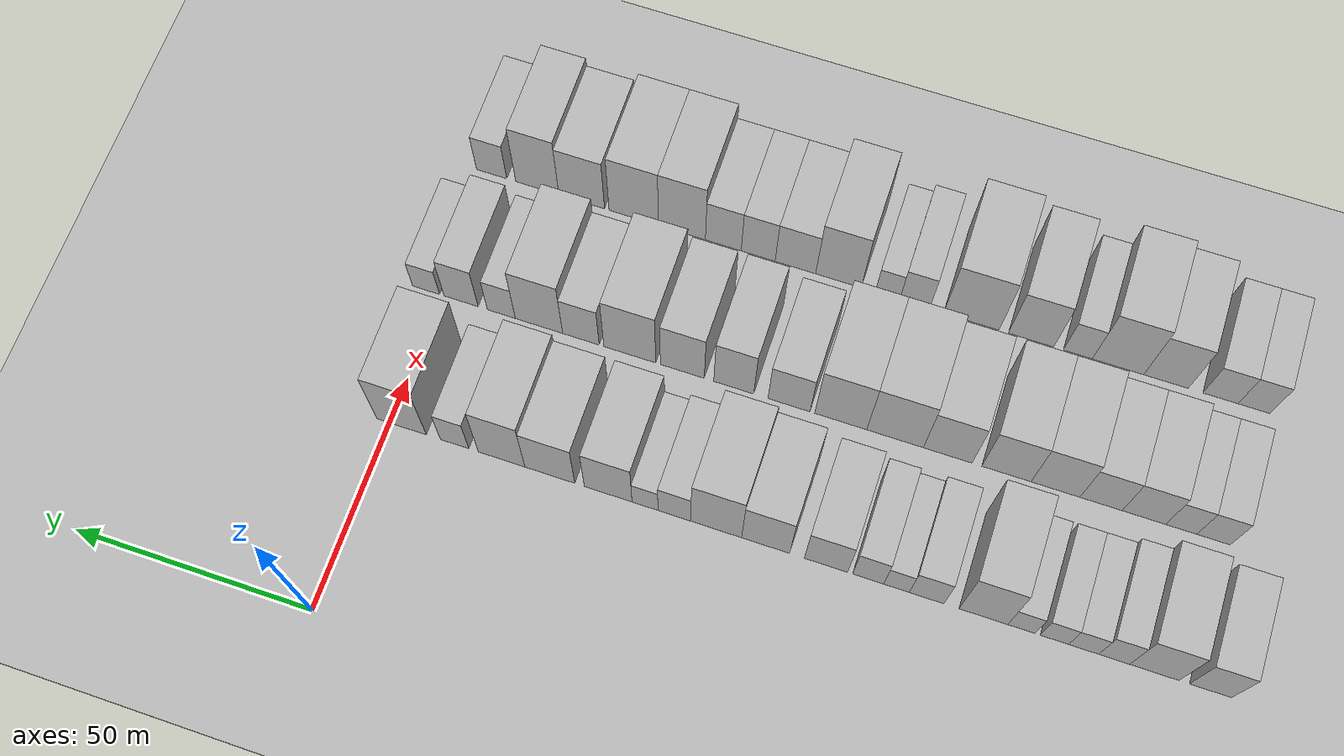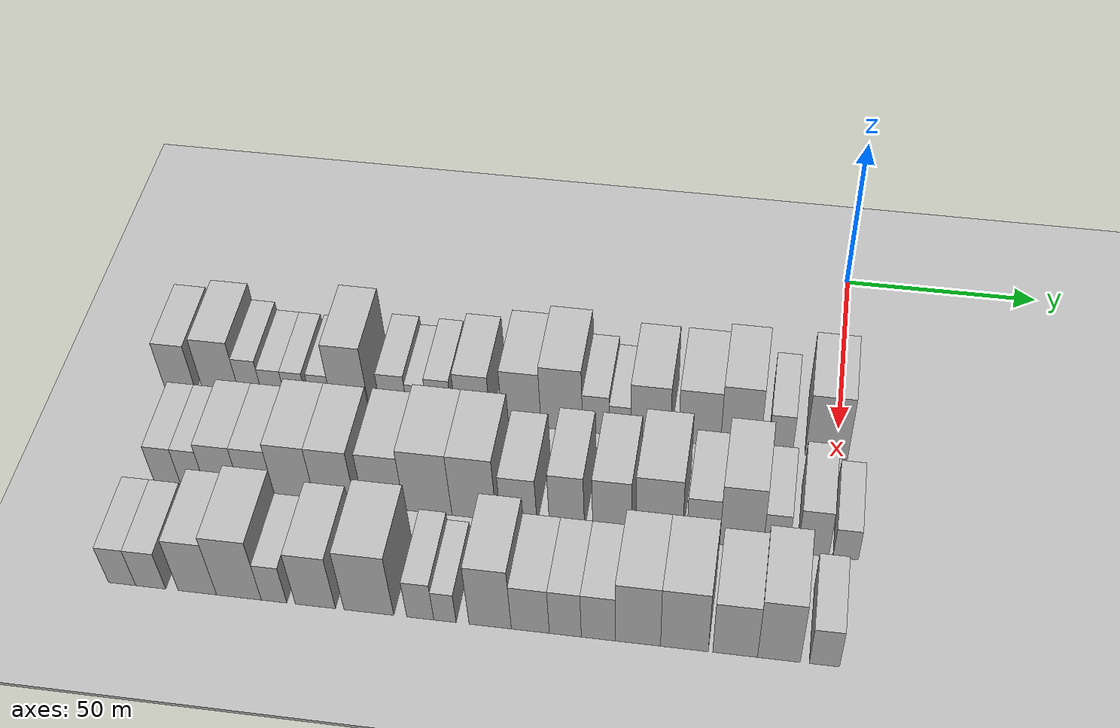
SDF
<sdf version="1.6">
 <world name="default">
  <include><name>ground_plane_1</name><uri>model://HANNAS_ground_plane</uri></include>
  <include>
   <name>ground_plane_2</name>
   <uri>model://HANNAS_ground_plane</uri>
   <pose>100 0 0  0 0 0</pose>
  </include>
  <model name="building_20">
   <static>1</static>
   <pose>50.0000 -167.0182 0 0.000000 0.000000 0.000000</pose>
   <link name="link">
    <pose>0 0 9.00 0 0 0</pose>
    <collision name="collision"><geometry><box><size>20.0000 8.1402 18.0000</size></box></geometry></collision>
    <visual name="visual">
     <cast_shadows>0</cast_shadows>
     <geometry><box><size>20.0000 8.1402 18.0000</size></box></geometry>
     <material>
      <script>
       <uri>model://HANNAS_wall/materials/scripts</uri>
       <uri>model://HANNAS_wall/materials/textures</uri>
       <name>vrc/HANNAS_wall</name>
      </script>
     </material>
    </visual>
   </link>
  </model>
  <model name="building_21">
   <static>1</static>
   <pose>50.0000 -156.1584 0 0.000000 0.000000 0.000000</pose>
   <link name="link">
    <pose>0 0 10.50 0 0 0</pose>
    <collision name="collision"><geometry><box><size>20.0000 9.5794 21.0000</size></box></geometry></collision>
    <visual name="visual">
     <cast_shadows>0</cast_shadows>
     <geometry><box><size>20.0000 9.5794 21.0000</size></box></geometry>
     <material>
      <script>
       <uri>model://HANNAS_wall/materials/scripts</uri>
       <uri>model://HANNAS_wall/materials/textures</uri>
       <name>vrc/HANNAS_wall</name>
      </script>
     </material>
    </visual>
   </link>
  </model>
  <model name="building_22">
   <static>1</static>
   <pose>50.0000 -148.3388 0 0.000000 0.000000 0.000000</pose>
   <link name="link">
    <pose>0 0 7.50 0 0 0</pose>
    <collision name="collision"><geometry><box><size>20.0000 6.0599 15.0000</size></box></geometry></collision>
    <visual name="visual">
     <cast_shadows>0</cast_shadows>
     <geometry><box><size>20.0000 6.0599 15.0000</size></box></geometry>
     <material>
      <script>
       <uri>model://HANNAS_wall/materials/scripts</uri>
       <uri>model://HANNAS_wall/materials/textures</uri>
       <name>vrc/HANNAS_wall</name>
      </script>
     </material>
    </visual>
   </link>
  </model>
  <model name="building_23">
   <static>1</static>
   <pose>50.0000 -142.3592 0 0.000000 0.000000 0.000000</pose>
   <link name="link">
    <pose>0 0 6.00 0 0 0</pose>
    <collision name="collision"><geometry><box><size>20.0000 5.8992 12.0000</size></box></geometry></collision>
    <visual name="visual">
     <cast_shadows>0</cast_shadows>
     <geometry><box><size>20.0000 5.8992 12.0000</size></box></geometry>
     <material>
      <script>
       <uri>model://HANNAS_wall/materials/scripts</uri>
       <uri>model://HANNAS_wall/materials/textures</uri>
       <name>vrc/HANNAS_wall</name>
      </script>
     </material>
    </visual>
   </link>
  </model>
  <model name="building_24">
   <static>1</static>
   <pose>50.0000 -136.6137 0 0.000000 0.000000 0.000000</pose>
   <link name="link">
    <pose>0 0 6.00 0 0 0</pose>
    <collision name="collision"><geometry><box><size>20.0000 5.5917 12.0000</size></box></geometry></collision>
    <visual name="visual">
     <cast_shadows>0</cast_shadows>
     <geometry><box><size>20.0000 5.5917 12.0000</size></box></geometry>
     <material>
      <script>
       <uri>model://HANNAS_wall/materials/scripts</uri>
       <uri>model://HANNAS_wall/materials/textures</uri>
       <name>vrc/HANNAS_wall</name>
      </script>
     </material>
    </visual>
   </link>
  </model>
  <model name="building_25">
   <static>1</static>
   <pose>50.0000 -130.1147 0 0.000000 0.000000 0.000000</pose>
   <link name="link">
    <pose>0 0 6.00 0 0 0</pose>
    <collision name="collision"><geometry><box><size>20.0000 5.4064 12.0000</size></box></geometry></collision>
    <visual name="visual">
     <cast_shadows>0</cast_shadows>
     <geometry><box><size>20.0000 5.4064 12.0000</size></box></geometry>
     <material>
      <script>
       <uri>model://HANNAS_wall/materials/scripts</uri>
       <uri>model://HANNAS_wall/materials/textures</uri>
       <name>vrc/HANNAS_wall</name>
      </script>
     </material>
    </visual>
   </link>
  </model>
  <model name="building_26">
   <static>1</static>
   <pose>50.0000 -122.5691 0 0.000000 0.000000 0.000000</pose>
   <link name="link">
    <pose>0 0 12.00 0 0 0</pose>
    <collision name="collision"><geometry><box><size>20.0000 9.6849 24.0000</size></box></geometry></collision>
    <visual name="visual">
     <cast_shadows>0</cast_shadows>
     <geometry><box><size>20.0000 9.6849 24.0000</size></box></geometry>
     <material>
      <script>
       <uri>model://HANNAS_wall/materials/scripts</uri>
       <uri>model://HANNAS_wall/materials/textures</uri>
       <name>vrc/HANNAS_wall</name>
      </script>
     </material>
    </visual>
   </link>
  </model>
  <model name="building_27">
   <static>1</static>
   <pose>50.0000 -111.2529 0 0.000000 0.000000 0.000000</pose>
   <link name="link">
    <pose>0 0 7.50 0 0 0</pose>
    <collision name="collision"><geometry><box><size>20.0000 6.9476 15.0000</size></box></geometry></collision>
    <visual name="visual">
     <cast_shadows>0</cast_shadows>
     <geometry><box><size>20.0000 6.9476 15.0000</size></box></geometry>
     <material>
      <script>
       <uri>model://HANNAS_wall/materials/scripts</uri>
       <uri>model://HANNAS_wall/materials/textures</uri>
       <name>vrc/HANNAS_wall</name>
      </script>
     </material>
    </visual>
   </link>
  </model>
  <model name="building_28">
   <static>1</static>
   <pose>50.0000 -105.2134 0 0.000000 0.000000 0.000000</pose>
   <link name="link">
    <pose>0 0 6.00 0 0 0</pose>
    <collision name="collision"><geometry><box><size>20.0000 5.1313 12.0000</size></box></geometry></collision>
    <visual name="visual">
     <cast_shadows>0</cast_shadows>
     <geometry><box><size>20.0000 5.1313 12.0000</size></box></geometry>
     <material>
      <script>
       <uri>model://HANNAS_wall/materials/scripts</uri>
       <uri>model://HANNAS_wall/materials/textures</uri>
       <name>vrc/HANNAS_wall</name>
      </script>
     </material>
    </visual>
   </link>
  </model>
  <model name="building_29">
   <static>1</static>
   <pose>50.0000 -99.5146 0 0.000000 0.000000 0.000000</pose>
   <link name="link">
    <pose>0 0 7.50 0 0 0</pose>
    <collision name="collision"><geometry><box><size>20.0000 6.2664 15.0000</size></box></geometry></collision>
    <visual name="visual">
     <cast_shadows>0</cast_shadows>
     <geometry><box><size>20.0000 6.2664 15.0000</size></box></geometry>
     <material>
      <script>
       <uri>model://HANNAS_wall/materials/scripts</uri>
       <uri>model://HANNAS_wall/materials/textures</uri>
       <name>vrc/HANNAS_wall</name>
      </script>
     </material>
    </visual>
   </link>
  </model>
  <model name="building_30">
   <static>1</static>
   <pose>50.0000 -90.9956 0 0.000000 0.000000 0.000000</pose>
   <link name="link">
    <pose>0 0 9.00 0 0 0</pose>
    <collision name="collision"><geometry><box><size>20.0000 8.7716 18.0000</size></box></geometry></collision>
    <visual name="visual">
     <cast_shadows>0</cast_shadows>
     <geometry><box><size>20.0000 8.7716 18.0000</size></box></geometry>
     <material>
      <script>
       <uri>model://HANNAS_wall/materials/scripts</uri>
       <uri>model://HANNAS_wall/materials/textures</uri>
       <name>vrc/HANNAS_wall</name>
      </script>
     </material>
    </visual>
   </link>
  </model>
  <model name="building_31">
   <static>1</static>
   <pose>50.0000 -78.7101 0 0.000000 0.000000 0.000000</pose>
   <link name="link">
    <pose>0 0 10.50 0 0 0</pose>
    <collision name="collision"><geometry><box><size>20.0000 9.7994 21.0000</size></box></geometry></collision>
    <visual name="visual">
     <cast_shadows>0</cast_shadows>
     <geometry><box><size>20.0000 9.7994 21.0000</size></box></geometry>
     <material>
      <script>
       <uri>model://HANNAS_wall/materials/scripts</uri>
       <uri>model://HANNAS_wall/materials/textures</uri>
       <name>vrc/HANNAS_wall</name>
      </script>
     </material>
    </visual>
   </link>
  </model>
  <model name="building_32">
   <static>1</static>
   <pose>50.0000 -68.5480 0 0.000000 0.000000 0.000000</pose>
   <link name="link">
    <pose>0 0 12.00 0 0 0</pose>
    <collision name="collision"><geometry><box><size>20.0000 10.5249 24.0000</size></box></geometry></collision>
    <visual name="visual">
     <cast_shadows>0</cast_shadows>
     <geometry><box><size>20.0000 10.5249 24.0000</size></box></geometry>
     <material>
      <script>
       <uri>model://HANNAS_wall/materials/scripts</uri>
       <uri>model://HANNAS_wall/materials/textures</uri>
       <name>vrc/HANNAS_wall</name>
      </script>
     </material>
    </visual>
   </link>
  </model>
  <model name="building_33">
   <static>1</static>
   <pose>50.0000 -59.9361 0 0.000000 0.000000 0.000000</pose>
   <link name="link">
    <pose>0 0 7.50 0 0 0</pose>
    <collision name="collision"><geometry><box><size>20.0000 6.6990 15.0000</size></box></geometry></collision>
    <visual name="visual">
     <cast_shadows>0</cast_shadows>
     <geometry><box><size>20.0000 6.6990 15.0000</size></box></geometry>
     <material>
      <script>
       <uri>model://HANNAS_wall/materials/scripts</uri>
       <uri>model://HANNAS_wall/materials/textures</uri>
       <name>vrc/HANNAS_wall</name>
      </script>
     </material>
    </visual>
   </link>
  </model>
  <model name="building_34">
   <static>1</static>
   <pose>50.0000 -53.8997 0 0.000000 0.000000 0.000000</pose>
   <link name="link">
    <pose>0 0 6.00 0 0 0</pose>
    <collision name="collision"><geometry><box><size>20.0000 5.3738 12.0000</size></box></geometry></collision>
    <visual name="visual">
     <cast_shadows>0</cast_shadows>
     <geometry><box><size>20.0000 5.3738 12.0000</size></box></geometry>
     <material>
      <script>
       <uri>model://HANNAS_wall/materials/scripts</uri>
       <uri>model://HANNAS_wall/materials/textures</uri>
       <name>vrc/HANNAS_wall</name>
      </script>
     </material>
    </visual>
   </link>
  </model>
  <model name="building_35">
   <static>1</static>
   <pose>50.0000 -46.2519 0 0.000000 0.000000 0.000000</pose>
   <link name="link">
    <pose>0 0 10.50 0 0 0</pose>
    <collision name="collision"><geometry><box><size>20.0000 9.9219 21.0000</size></box></geometry></collision>
    <visual name="visual">
     <cast_shadows>0</cast_shadows>
     <geometry><box><size>20.0000 9.9219 21.0000</size></box></geometry>
     <material>
      <script>
       <uri>model://HANNAS_wall/materials/scripts</uri>
       <uri>model://HANNAS_wall/materials/textures</uri>
       <name>vrc/HANNAS_wall</name>
      </script>
     </material>
    </visual>
   </link>
  </model>
  <model name="building_36">
   <static>1</static>
   <pose>50.0000 -34.0542 0 0.000000 0.000000 0.000000</pose>
   <link name="link">
    <pose>0 0 10.50 0 0 0</pose>
    <collision name="collision"><geometry><box><size>20.0000 10.4734 21.0000</size></box></geometry></collision>
    <visual name="visual">
     <cast_shadows>0</cast_shadows>
     <geometry><box><size>20.0000 10.4734 21.0000</size></box></geometry>
     <material>
      <script>
       <uri>model://HANNAS_wall/materials/scripts</uri>
       <uri>model://HANNAS_wall/materials/textures</uri>
       <name>vrc/HANNAS_wall</name>
      </script>
     </material>
    </visual>
   </link>
  </model>
  <model name="building_37">
   <static>1</static>
   <pose>50.0000 -23.8885 0 0.000000 0.000000 0.000000</pose>
   <link name="link">
    <pose>0 0 12.00 0 0 0</pose>
    <collision name="collision"><geometry><box><size>20.0000 9.8579 24.0000</size></box></geometry></collision>
    <visual name="visual">
     <cast_shadows>0</cast_shadows>
     <geometry><box><size>20.0000 9.8579 24.0000</size></box></geometry>
     <material>
      <script>
       <uri>model://HANNAS_wall/materials/scripts</uri>
       <uri>model://HANNAS_wall/materials/textures</uri>
       <name>vrc/HANNAS_wall</name>
      </script>
     </material>
    </visual>
   </link>
  </model>
  <model name="building_38">
   <static>1</static>
   <pose>50.0000 -13.9363 0 0.000000 0.000000 0.000000</pose>
   <link name="link">
    <pose>0 0 7.50 0 0 0</pose>
    <collision name="collision"><geometry><box><size>20.0000 6.0465 15.0000</size></box></geometry></collision>
    <visual name="visual">
     <cast_shadows>0</cast_shadows>
     <geometry><box><size>20.0000 6.0465 15.0000</size></box></geometry>
     <material>
      <script>
       <uri>model://HANNAS_wall/materials/scripts</uri>
       <uri>model://HANNAS_wall/materials/textures</uri>
       <name>vrc/HANNAS_wall</name>
      </script>
     </material>
    </visual>
   </link>
  </model>
  <model name="building_39">
   <static>1</static>
   <pose>50.0000 -2.6505 0 0.000000 0.000000 0.000000</pose>
   <link name="link">
    <pose>0 0 12.00 0 0 0</pose>
    <collision name="collision"><geometry><box><size>20.0000 10.5251 24.0000</size></box></geometry></collision>
    <visual name="visual">
     <cast_shadows>0</cast_shadows>
     <geometry><box><size>20.0000 10.5251 24.0000</size></box></geometry>
     <material>
      <script>
       <uri>model://HANNAS_wall/materials/scripts</uri>
       <uri>model://HANNAS_wall/materials/textures</uri>
       <name>vrc/HANNAS_wall</name>
      </script>
     </material>
    </visual>
   </link>
  </model>
  <model name="building_96">
   <static>1</static>
   <pose>79.0000 -161.1237 0 0.000000 0.000000 0.000000</pose>
   <link name="link">
    <pose>0 0 7.50 0 0 0</pose>
    <collision name="collision"><geometry><box><size>20.0000 6.6468 15.0000</size></box></geometry></collision>
    <visual name="visual">
     <cast_shadows>0</cast_shadows>
     <geometry><box><size>20.0000 6.6468 15.0000</size></box></geometry>
     <material>
      <script>
       <uri>model://HANNAS_wall/materials/scripts</uri>
       <uri>model://HANNAS_wall/materials/textures</uri>
       <name>vrc/HANNAS_wall</name>
      </script>
     </material>
    </visual>
   </link>
  </model>
  <model name="building_97">
   <static>1</static>
   <pose>79.0000 -154.7119 0 0.000000 0.000000 0.000000</pose>
   <link name="link">
    <pose>0 0 7.50 0 0 0</pose>
    <collision name="collision"><geometry><box><size>20.0000 6.1768 15.0000</size></box></geometry></collision>
    <visual name="visual">
     <cast_shadows>0</cast_shadows>
     <geometry><box><size>20.0000 6.1768 15.0000</size></box></geometry>
     <material>
      <script>
       <uri>model://HANNAS_wall/materials/scripts</uri>
       <uri>model://HANNAS_wall/materials/textures</uri>
       <name>vrc/HANNAS_wall</name>
      </script>
     </material>
    </visual>
   </link>
  </model>
  <model name="building_98">
   <static>1</static>
   <pose>79.0000 -147.2518 0 0.000000 0.000000 0.000000</pose>
   <link name="link">
    <pose>0 0 9.00 0 0 0</pose>
    <collision name="collision"><geometry><box><size>20.0000 8.7434 18.0000</size></box></geometry></collision>
    <visual name="visual">
     <cast_shadows>0</cast_shadows>
     <geometry><box><size>20.0000 8.7434 18.0000</size></box></geometry>
     <material>
      <script>
       <uri>model://HANNAS_wall/materials/scripts</uri>
       <uri>model://HANNAS_wall/materials/textures</uri>
       <name>vrc/HANNAS_wall</name>
      </script>
     </material>
    </visual>
   </link>
  </model>
  <model name="building_99">
   <static>1</static>
   <pose>79.0000 -138.6268 0 0.000000 0.000000 0.000000</pose>
   <link name="link">
    <pose>0 0 9.00 0 0 0</pose>
    <collision name="collision"><geometry><box><size>20.0000 8.5066 18.0000</size></box></geometry></collision>
    <visual name="visual">
     <cast_shadows>0</cast_shadows>
     <geometry><box><size>20.0000 8.5066 18.0000</size></box></geometry>
     <material>
      <script>
       <uri>model://HANNAS_wall/materials/scripts</uri>
       <uri>model://HANNAS_wall/materials/textures</uri>
       <name>vrc/HANNAS_wall</name>
      </script>
     </material>
    </visual>
   </link>
  </model>
  <model name="building_100">
   <static>1</static>
   <pose>79.0000 -129.4145 0 0.000000 0.000000 0.000000</pose>
   <link name="link">
    <pose>0 0 10.50 0 0 0</pose>
    <collision name="collision"><geometry><box><size>20.0000 9.9181 21.0000</size></box></geometry></collision>
    <visual name="visual">
     <cast_shadows>0</cast_shadows>
     <geometry><box><size>20.0000 9.9181 21.0000</size></box></geometry>
     <material>
      <script>
       <uri>model://HANNAS_wall/materials/scripts</uri>
       <uri>model://HANNAS_wall/materials/textures</uri>
       <name>vrc/HANNAS_wall</name>
      </script>
     </material>
    </visual>
   </link>
  </model>
  <model name="building_101">
   <static>1</static>
   <pose>79.0000 -119.4290 0 0.000000 0.000000 0.000000</pose>
   <link name="link">
    <pose>0 0 10.50 0 0 0</pose>
    <collision name="collision"><geometry><box><size>20.0000 10.0529 21.0000</size></box></geometry></collision>
    <visual name="visual">
     <cast_shadows>0</cast_shadows>
     <geometry><box><size>20.0000 10.0529 21.0000</size></box></geometry>
     <material>
      <script>
       <uri>model://HANNAS_wall/materials/scripts</uri>
       <uri>model://HANNAS_wall/materials/textures</uri>
       <name>vrc/HANNAS_wall</name>
      </script>
     </material>
    </visual>
   </link>
  </model>
  <model name="building_102">
   <static>1</static>
   <pose>79.0000 -107.3969 0 0.000000 0.000000 0.000000</pose>
   <link name="link">
    <pose>0 0 10.50 0 0 0</pose>
    <collision name="collision"><geometry><box><size>20.0000 10.0112 21.0000</size></box></geometry></collision>
    <visual name="visual">
     <cast_shadows>0</cast_shadows>
     <geometry><box><size>20.0000 10.0112 21.0000</size></box></geometry>
     <material>
      <script>
       <uri>model://HANNAS_wall/materials/scripts</uri>
       <uri>model://HANNAS_wall/materials/textures</uri>
       <name>vrc/HANNAS_wall</name>
      </script>
     </material>
    </visual>
   </link>
  </model>
  <model name="building_103">
   <static>1</static>
   <pose>79.0000 -96.5402 0 0.000000 0.000000 0.000000</pose>
   <link name="link">
    <pose>0 0 12.00 0 0 0</pose>
    <collision name="collision"><geometry><box><size>20.0000 11.7023 24.0000</size></box></geometry></collision>
    <visual name="visual">
     <cast_shadows>0</cast_shadows>
     <geometry><box><size>20.0000 11.7023 24.0000</size></box></geometry>
     <material>
      <script>
       <uri>model://HANNAS_wall/materials/scripts</uri>
       <uri>model://HANNAS_wall/materials/textures</uri>
       <name>vrc/HANNAS_wall</name>
      </script>
     </material>
    </visual>
   </link>
  </model>
  <model name="building_104">
   <static>1</static>
   <pose>79.0000 -85.2646 0 0.000000 0.000000 0.000000</pose>
   <link name="link">
    <pose>0 0 12.00 0 0 0</pose>
    <collision name="collision"><geometry><box><size>20.0000 10.8489 24.0000</size></box></geometry></collision>
    <visual name="visual">
     <cast_shadows>0</cast_shadows>
     <geometry><box><size>20.0000 10.8489 24.0000</size></box></geometry>
     <material>
      <script>
       <uri>model://HANNAS_wall/materials/scripts</uri>
       <uri>model://HANNAS_wall/materials/textures</uri>
       <name>vrc/HANNAS_wall</name>
      </script>
     </material>
    </visual>
   </link>
  </model>
  <model name="building_105">
   <static>1</static>
   <pose>79.0000 -74.4326 0 0.000000 0.000000 0.000000</pose>
   <link name="link">
    <pose>0 0 9.00 0 0 0</pose>
    <collision name="collision"><geometry><box><size>20.0000 8.8153 18.0000</size></box></geometry></collision>
    <visual name="visual">
     <cast_shadows>0</cast_shadows>
     <geometry><box><size>20.0000 8.8153 18.0000</size></box></geometry>
     <material>
      <script>
       <uri>model://HANNAS_wall/materials/scripts</uri>
       <uri>model://HANNAS_wall/materials/textures</uri>
       <name>vrc/HANNAS_wall</name>
      </script>
     </material>
    </visual>
   </link>
  </model>
  <model name="building_106">
   <static>1</static>
   <pose>79.0000 -62.8008 0 0.000000 0.000000 0.000000</pose>
   <link name="link">
    <pose>0 0 10.50 0 0 0</pose>
    <collision name="collision"><geometry><box><size>20.0000 8.4483 21.0000</size></box></geometry></collision>
    <visual name="visual">
     <cast_shadows>0</cast_shadows>
     <geometry><box><size>20.0000 8.4483 21.0000</size></box></geometry>
     <material>
      <script>
       <uri>model://HANNAS_wall/materials/scripts</uri>
       <uri>model://HANNAS_wall/materials/textures</uri>
       <name>vrc/HANNAS_wall</name>
      </script>
     </material>
    </visual>
   </link>
  </model>
  <model name="building_107">
   <static>1</static>
   <pose>79.0000 -51.9100 0 0.000000 0.000000 0.000000</pose>
   <link name="link">
    <pose>0 0 10.50 0 0 0</pose>
    <collision name="collision"><geometry><box><size>20.0000 9.3333 21.0000</size></box></geometry></collision>
    <visual name="visual">
     <cast_shadows>0</cast_shadows>
     <geometry><box><size>20.0000 9.3333 21.0000</size></box></geometry>
     <material>
      <script>
       <uri>model://HANNAS_wall/materials/scripts</uri>
       <uri>model://HANNAS_wall/materials/textures</uri>
       <name>vrc/HANNAS_wall</name>
      </script>
     </material>
    </visual>
   </link>
  </model>
  <model name="building_108">
   <static>1</static>
   <pose>79.0000 -40.6981 0 0.000000 0.000000 0.000000</pose>
   <link name="link">
    <pose>0 0 12.00 0 0 0</pose>
    <collision name="collision"><geometry><box><size>20.0000 11.0905 24.0000</size></box></geometry></collision>
    <visual name="visual">
     <cast_shadows>0</cast_shadows>
     <geometry><box><size>20.0000 11.0905 24.0000</size></box></geometry>
     <material>
      <script>
       <uri>model://HANNAS_wall/materials/scripts</uri>
       <uri>model://HANNAS_wall/materials/textures</uri>
       <name>vrc/HANNAS_wall</name>
      </script>
     </material>
    </visual>
   </link>
  </model>
  <model name="building_109">
   <static>1</static>
   <pose>79.0000 -30.2200 0 0.000000 0.000000 0.000000</pose>
   <link name="link">
    <pose>0 0 9.00 0 0 0</pose>
    <collision name="collision"><geometry><box><size>20.0000 7.8657 18.0000</size></box></geometry></collision>
    <visual name="visual">
     <cast_shadows>0</cast_shadows>
     <geometry><box><size>20.0000 7.8657 18.0000</size></box></geometry>
     <material>
      <script>
       <uri>model://HANNAS_wall/materials/scripts</uri>
       <uri>model://HANNAS_wall/materials/textures</uri>
       <name>vrc/HANNAS_wall</name>
      </script>
     </material>
    </visual>
   </link>
  </model>
  <model name="building_110">
   <static>1</static>
   <pose>79.0000 -21.1591 0 0.000000 0.000000 0.000000</pose>
   <link name="link">
    <pose>0 0 12.00 0 0 0</pose>
    <collision name="collision"><geometry><box><size>20.0000 10.2562 24.0000</size></box></geometry></collision>
    <visual name="visual">
     <cast_shadows>0</cast_shadows>
     <geometry><box><size>20.0000 10.2562 24.0000</size></box></geometry>
     <material>
      <script>
       <uri>model://HANNAS_wall/materials/scripts</uri>
       <uri>model://HANNAS_wall/materials/textures</uri>
       <name>vrc/HANNAS_wall</name>
      </script>
     </material>
    </visual>
   </link>
  </model>
  <model name="building_111">
   <static>1</static>
   <pose>79.0000 -12.9830 0 0.000000 0.000000 0.000000</pose>
   <link name="link">
    <pose>0 0 7.50 0 0 0</pose>
    <collision name="collision"><geometry><box><size>20.0000 6.0959 15.0000</size></box></geometry></collision>
    <visual name="visual">
     <cast_shadows>0</cast_shadows>
     <geometry><box><size>20.0000 6.0959 15.0000</size></box></geometry>
     <material>
      <script>
       <uri>model://HANNAS_wall/materials/scripts</uri>
       <uri>model://HANNAS_wall/materials/textures</uri>
       <name>vrc/HANNAS_wall</name>
      </script>
     </material>
    </visual>
   </link>
  </model>
  <model name="building_112">
   <static>1</static>
   <pose>79.0000 -4.2172 0 0.000000 0.000000 0.000000</pose>
   <link name="link">
    <pose>0 0 9.00 0 0 0</pose>
    <collision name="collision"><geometry><box><size>20.0000 7.4356 18.0000</size></box></geometry></collision>
    <visual name="visual">
     <cast_shadows>0</cast_shadows>
     <geometry><box><size>20.0000 7.4356 18.0000</size></box></geometry>
     <material>
      <script>
       <uri>model://HANNAS_wall/materials/scripts</uri>
       <uri>model://HANNAS_wall/materials/textures</uri>
       <name>vrc/HANNAS_wall</name>
      </script>
     </material>
    </visual>
   </link>
  </model>
  <model name="building_113">
   <static>1</static>
   <pose>79.0000 3.4635 0 0.000000 0.000000 0.000000</pose>
   <link name="link">
    <pose>0 0 6.00 0 0 0</pose>
    <collision name="collision"><geometry><box><size>20.0000 5.9259 12.0000</size></box></geometry></collision>
    <visual name="visual">
     <cast_shadows>0</cast_shadows>
     <geometry><box><size>20.0000 5.9259 12.0000</size></box></geometry>
     <material>
      <script>
       <uri>model://HANNAS_wall/materials/scripts</uri>
       <uri>model://HANNAS_wall/materials/textures</uri>
       <name>vrc/HANNAS_wall</name>
      </script>
     </material>
    </visual>
   </link>
  </model>
  <model name="building_168">
   <static>1</static>
   <pose>108.0000 -162.9150 0 0.000000 0.000000 0.000000</pose>
   <link name="link">
    <pose>0 0 7.50 0 0 0</pose>
    <collision name="collision"><geometry><box><size>20.0000 6.5440 15.0000</size></box></geometry></collision>
    <visual name="visual">
     <cast_shadows>0</cast_shadows>
     <geometry><box><size>20.0000 6.5440 15.0000</size></box></geometry>
     <material>
      <script>
       <uri>model://HANNAS_wall/materials/scripts</uri>
       <uri>model://HANNAS_wall/materials/textures</uri>
       <name>vrc/HANNAS_wall</name>
      </script>
     </material>
    </visual>
   </link>
  </model>
  <model name="building_169">
   <static>1</static>
   <pose>108.0000 -156.0449 0 0.000000 0.000000 0.000000</pose>
   <link name="link">
    <pose>0 0 7.50 0 0 0</pose>
    <collision name="collision"><geometry><box><size>20.0000 7.1961 15.0000</size></box></geometry></collision>
    <visual name="visual">
     <cast_shadows>0</cast_shadows>
     <geometry><box><size>20.0000 7.1961 15.0000</size></box></geometry>
     <material>
      <script>
       <uri>model://HANNAS_wall/materials/scripts</uri>
       <uri>model://HANNAS_wall/materials/textures</uri>
       <name>vrc/HANNAS_wall</name>
      </script>
     </material>
    </visual>
   </link>
  </model>
  <model name="building_170">
   <static>1</static>
   <pose>108.0000 -144.8700 0 0.000000 0.000000 0.000000</pose>
   <link name="link">
    <pose>0 0 10.50 0 0 0</pose>
    <collision name="collision"><geometry><box><size>20.0000 9.1538 21.0000</size></box></geometry></collision>
    <visual name="visual">
     <cast_shadows>0</cast_shadows>
     <geometry><box><size>20.0000 9.1538 21.0000</size></box></geometry>
     <material>
      <script>
       <uri>model://HANNAS_wall/materials/scripts</uri>
       <uri>model://HANNAS_wall/materials/textures</uri>
       <name>vrc/HANNAS_wall</name>
      </script>
     </material>
    </visual>
   </link>
  </model>
  <model name="building_171">
   <static>1</static>
   <pose>108.0000 -134.9689 0 0.000000 0.000000 0.000000</pose>
   <link name="link">
    <pose>0 0 12.00 0 0 0</pose>
    <collision name="collision"><geometry><box><size>20.0000 10.6484 24.0000</size></box></geometry></collision>
    <visual name="visual">
     <cast_shadows>0</cast_shadows>
     <geometry><box><size>20.0000 10.6484 24.0000</size></box></geometry>
     <material>
      <script>
       <uri>model://HANNAS_wall/materials/scripts</uri>
       <uri>model://HANNAS_wall/materials/textures</uri>
       <name>vrc/HANNAS_wall</name>
      </script>
     </material>
    </visual>
   </link>
  </model>
  <model name="building_172">
   <static>1</static>
   <pose>108.0000 -126.6317 0 0.000000 0.000000 0.000000</pose>
   <link name="link">
    <pose>0 0 7.50 0 0 0</pose>
    <collision name="collision"><geometry><box><size>20.0000 6.0258 15.0000</size></box></geometry></collision>
    <visual name="visual">
     <cast_shadows>0</cast_shadows>
     <geometry><box><size>20.0000 6.0258 15.0000</size></box></geometry>
     <material>
      <script>
       <uri>model://HANNAS_wall/materials/scripts</uri>
       <uri>model://HANNAS_wall/materials/textures</uri>
       <name>vrc/HANNAS_wall</name>
      </script>
     </material>
    </visual>
   </link>
  </model>
  <model name="building_173">
   <static>1</static>
   <pose>108.0000 -116.8822 0 0.000000 0.000000 0.000000</pose>
   <link name="link">
    <pose>0 0 10.50 0 0 0</pose>
    <collision name="collision"><geometry><box><size>20.0000 9.4732 21.0000</size></box></geometry></collision>
    <visual name="visual">
     <cast_shadows>0</cast_shadows>
     <geometry><box><size>20.0000 9.4732 21.0000</size></box></geometry>
     <material>
      <script>
       <uri>model://HANNAS_wall/materials/scripts</uri>
       <uri>model://HANNAS_wall/materials/textures</uri>
       <name>vrc/HANNAS_wall</name>
      </script>
     </material>
    </visual>
   </link>
  </model>
  <model name="building_174">
   <static>1</static>
   <pose>108.0000 -104.3004 0 0.000000 0.000000 0.000000</pose>
   <link name="link">
    <pose>0 0 12.00 0 0 0</pose>
    <collision name="collision"><geometry><box><size>20.0000 11.6904 24.0000</size></box></geometry></collision>
    <visual name="visual">
     <cast_shadows>0</cast_shadows>
     <geometry><box><size>20.0000 11.6904 24.0000</size></box></geometry>
     <material>
      <script>
       <uri>model://HANNAS_wall/materials/scripts</uri>
       <uri>model://HANNAS_wall/materials/textures</uri>
       <name>vrc/HANNAS_wall</name>
      </script>
     </material>
    </visual>
   </link>
  </model>
  <model name="building_175">
   <static>1</static>
   <pose>108.0000 -92.2888 0 0.000000 0.000000 0.000000</pose>
   <link name="link">
    <pose>0 0 7.50 0 0 0</pose>
    <collision name="collision"><geometry><box><size>20.0000 6.3327 15.0000</size></box></geometry></collision>
    <visual name="visual">
     <cast_shadows>0</cast_shadows>
     <geometry><box><size>20.0000 6.3327 15.0000</size></box></geometry>
     <material>
      <script>
       <uri>model://HANNAS_wall/materials/scripts</uri>
       <uri>model://HANNAS_wall/materials/textures</uri>
       <name>vrc/HANNAS_wall</name>
      </script>
     </material>
    </visual>
   </link>
  </model>
  <model name="building_176">
   <static>1</static>
   <pose>108.0000 -86.5294 0 0.000000 0.000000 0.000000</pose>
   <link name="link">
    <pose>0 0 6.00 0 0 0</pose>
    <collision name="collision"><geometry><box><size>20.0000 5.1861 12.0000</size></box></geometry></collision>
    <visual name="visual">
     <cast_shadows>0</cast_shadows>
     <geometry><box><size>20.0000 5.1861 12.0000</size></box></geometry>
     <material>
      <script>
       <uri>model://HANNAS_wall/materials/scripts</uri>
       <uri>model://HANNAS_wall/materials/textures</uri>
       <name>vrc/HANNAS_wall</name>
      </script>
     </material>
    </visual>
   </link>
  </model>
  <model name="building_177">
   <static>1</static>
   <pose>108.0000 -76.0396 0 0.000000 0.000000 0.000000</pose>
   <link name="link">
    <pose>0 0 12.00 0 0 0</pose>
    <collision name="collision"><geometry><box><size>20.0000 9.7937 24.0000</size></box></geometry></collision>
    <visual name="visual">
     <cast_shadows>0</cast_shadows>
     <geometry><box><size>20.0000 9.7937 24.0000</size></box></geometry>
     <material>
      <script>
       <uri>model://HANNAS_wall/materials/scripts</uri>
       <uri>model://HANNAS_wall/materials/textures</uri>
       <name>vrc/HANNAS_wall</name>
      </script>
     </material>
    </visual>
   </link>
  </model>
  <model name="building_178">
   <static>1</static>
   <pose>108.0000 -66.7721 0 0.000000 0.000000 0.000000</pose>
   <link name="link">
    <pose>0 0 9.00 0 0 0</pose>
    <collision name="collision"><geometry><box><size>20.0000 8.7412 18.0000</size></box></geometry></collision>
    <visual name="visual">
     <cast_shadows>0</cast_shadows>
     <geometry><box><size>20.0000 8.7412 18.0000</size></box></geometry>
     <material>
      <script>
       <uri>model://HANNAS_wall/materials/scripts</uri>
       <uri>model://HANNAS_wall/materials/textures</uri>
       <name>vrc/HANNAS_wall</name>
      </script>
     </material>
    </visual>
   </link>
  </model>
  <model name="building_179">
   <static>1</static>
   <pose>108.0000 -58.7201 0 0.000000 0.000000 0.000000</pose>
   <link name="link">
    <pose>0 0 9.00 0 0 0</pose>
    <collision name="collision"><geometry><box><size>20.0000 7.3628 18.0000</size></box></geometry></collision>
    <visual name="visual">
     <cast_shadows>0</cast_shadows>
     <geometry><box><size>20.0000 7.3628 18.0000</size></box></geometry>
     <material>
      <script>
       <uri>model://HANNAS_wall/materials/scripts</uri>
       <uri>model://HANNAS_wall/materials/textures</uri>
       <name>vrc/HANNAS_wall</name>
      </script>
     </material>
    </visual>
   </link>
  </model>
  <model name="building_180">
   <static>1</static>
   <pose>108.0000 -51.1428 0 0.000000 0.000000 0.000000</pose>
   <link name="link">
    <pose>0 0 9.00 0 0 0</pose>
    <collision name="collision"><geometry><box><size>20.0000 7.7918 18.0000</size></box></geometry></collision>
    <visual name="visual">
     <cast_shadows>0</cast_shadows>
     <geometry><box><size>20.0000 7.7918 18.0000</size></box></geometry>
     <material>
      <script>
       <uri>model://HANNAS_wall/materials/scripts</uri>
       <uri>model://HANNAS_wall/materials/textures</uri>
       <name>vrc/HANNAS_wall</name>
      </script>
     </material>
    </visual>
   </link>
  </model>
  <model name="building_181">
   <static>1</static>
   <pose>108.0000 -42.0990 0 0.000000 0.000000 0.000000</pose>
   <link name="link">
    <pose>0 0 12.00 0 0 0</pose>
    <collision name="collision"><geometry><box><size>20.0000 10.2957 24.0000</size></box></geometry></collision>
    <visual name="visual">
     <cast_shadows>0</cast_shadows>
     <geometry><box><size>20.0000 10.2957 24.0000</size></box></geometry>
     <material>
      <script>
       <uri>model://HANNAS_wall/materials/scripts</uri>
       <uri>model://HANNAS_wall/materials/textures</uri>
       <name>vrc/HANNAS_wall</name>
      </script>
     </material>
    </visual>
   </link>
  </model>
  <model name="building_182">
   <static>1</static>
   <pose>108.0000 -31.5286 0 0.000000 0.000000 0.000000</pose>
   <link name="link">
    <pose>0 0 12.00 0 0 0</pose>
    <collision name="collision"><geometry><box><size>20.0000 10.8452 24.0000</size></box></geometry></collision>
    <visual name="visual">
     <cast_shadows>0</cast_shadows>
     <geometry><box><size>20.0000 10.8452 24.0000</size></box></geometry>
     <material>
      <script>
       <uri>model://HANNAS_wall/materials/scripts</uri>
       <uri>model://HANNAS_wall/materials/textures</uri>
       <name>vrc/HANNAS_wall</name>
      </script>
     </material>
    </visual>
   </link>
  </model>
  <model name="building_183">
   <static>1</static>
   <pose>108.0000 -20.0475 0 0.000000 0.000000 0.000000</pose>
   <link name="link">
    <pose>0 0 10.50 0 0 0</pose>
    <collision name="collision"><geometry><box><size>20.0000 10.1170 21.0000</size></box></geometry></collision>
    <visual name="visual">
     <cast_shadows>0</cast_shadows>
     <geometry><box><size>20.0000 10.1170 21.0000</size></box></geometry>
     <material>
      <script>
       <uri>model://HANNAS_wall/materials/scripts</uri>
       <uri>model://HANNAS_wall/materials/textures</uri>
       <name>vrc/HANNAS_wall</name>
      </script>
     </material>
    </visual>
   </link>
  </model>
  <model name="building_184">
   <static>1</static>
   <pose>108.0000 -10.1770 0 0.000000 0.000000 0.000000</pose>
   <link name="link">
    <pose>0 0 12.00 0 0 0</pose>
    <collision name="collision"><geometry><box><size>20.0000 9.6239 24.0000</size></box></geometry></collision>
    <visual name="visual">
     <cast_shadows>0</cast_shadows>
     <geometry><box><size>20.0000 9.6239 24.0000</size></box></geometry>
     <material>
      <script>
       <uri>model://HANNAS_wall/materials/scripts</uri>
       <uri>model://HANNAS_wall/materials/textures</uri>
       <name>vrc/HANNAS_wall</name>
      </script>
     </material>
    </visual>
   </link>
  </model>
  <model name="building_185">
   <static>1</static>
   <pose>108.0000 0.0322 0 0.000000 0.000000 0.000000</pose>
   <link name="link">
    <pose>0 0 7.50 0 0 0</pose>
    <collision name="collision"><geometry><box><size>20.0000 6.7945 15.0000</size></box></geometry></collision>
    <visual name="visual">
     <cast_shadows>0</cast_shadows>
     <geometry><box><size>20.0000 6.7945 15.0000</size></box></geometry>
     <material>
      <script>
       <uri>model://HANNAS_wall/materials/scripts</uri>
       <uri>model://HANNAS_wall/materials/textures</uri>
       <name>vrc/HANNAS_wall</name>
      </script>
     </material>
    </visual>
   </link>
  </model>
 </world>
</sdf>
